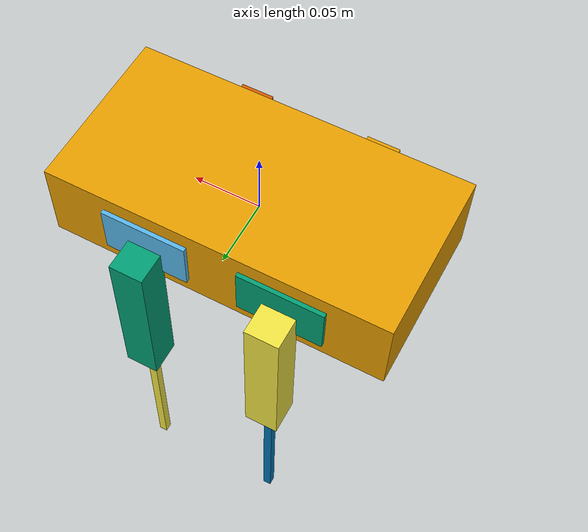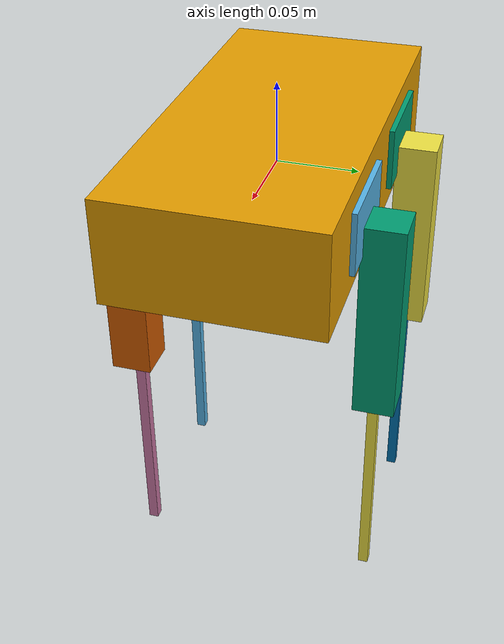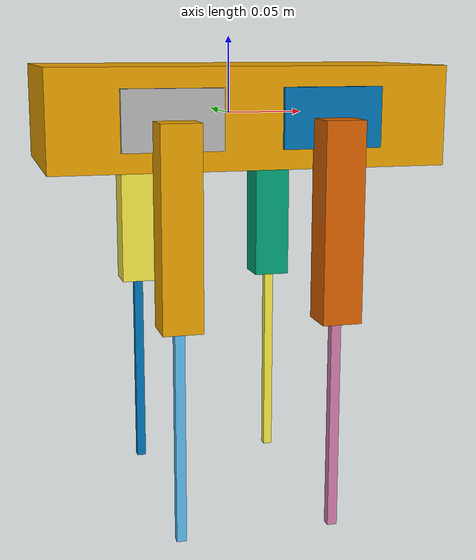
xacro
<?xml version="1.0" ?>
<!-- |    This document was autogenerated by xacro from /home/samee/ros2_ws/src/servo_controller/urdf/fixed_urdf2.urdf | -->
<!-- |    EDITING THIS FILE BY HAND IS NOT RECOMMENDED                                 | -->
<robot xmlns:xacro="http://www.ros.org/wiki/xacro" name="robot">

  <!-- Gazebo plugin for ros2_control -->
  <gazebo>
    <plugin name="gazebo_ros2_control" filename="libgazebo_ros2_control.so">
      <parameters>$(find servo_controller)/config/robot_controllers.yaml</parameters>

    </plugin>

  </gazebo>

  <link name="base_link">
    <visual>
      <geometry>
        <box size="0.254 0.127 0.0635"/>
      </geometry>
    </visual>
    <collision>
      <geometry>
        <box size="0.254 0.127 0.0635"/>
      </geometry>
    </collision>
    <inertial>
      <origin rpy="0.000 0.000 0.000" xyz="0.000 0.000 0.000"/>
      <mass value="2.000"/>
<inertia  ixx="0.0033602083333333335" ixy="0" ixz="0" iyy="0.011424708333333334" iyz="0" izz="0.013440833333333334" />    </inertial>
  </link>

  <!-- FL -->
  <joint name="hip_fl" type="revolute">
    <limit effort="100" lower="-0.2" upper="0.4" velocity="10"/>
    <origin rpy="0 0 0" xyz="0.0508 0.0508 0"/>
    <parent link="base_link"/>
    <child link="hipbone_fl"/>
    <axis xyz="1 0 0"/>
  </joint>

  <link name="hipbone_fl">
    <visual>
      <origin rpy="0 0 0" xyz="0.0 0.0 0"/>
      <geometry>
        <box size="0.0635 0.03175 0.0381"/>
      </geometry>
    </visual>
    <collision>
      <origin rpy="0 0 0" xyz="0.0 0.0 0"/>
      <geometry>
        <box size="0.0635 0.03175 0.0381"/>
      </geometry>
    </collision>
    <inertial>
      <origin rpy="0.000 0.000 0.000" xyz="0.000 0.000 0.000"/>
      <mass value="0.233"/>
<inertia  ixx="4.775864104166667e-05" ixy="0" ixz="0" iyy="0.00010647828166666667" iyz="0" izz="9.786606770833334e-05" />    </inertial>
  </link>

  <joint name="shoulder_fl" type="revolute">
    <limit effort="100" lower="-0.1" upper="0.6" velocity="10"/>
    <origin rpy="0 0 0" xyz="0 0 0"/>
    <axis xyz="0 1 0"/>
    <parent link="hipbone_fl"/>
    <child link="femur_fl"/>
  </joint>

  <link name="femur_fl">
    <visual>
      <origin rpy="0 0 0" xyz="0.0 0.027 -0.0635"/>
      <geometry>
        <box size="0.0254 0.0254 0.127"/>
      </geometry>
    </visual>
    <collision>
      <origin rpy="0 0 0" xyz="0.0 0.027 -0.0635"/>
      <geometry>
        <box size="0.0254 0.0254 0.127"/>
      </geometry>
    </collision>
    <inertial>
      <origin rpy="0.000 0.000 0.000" xyz="0.0 0.027 -0.0635"/>
      <mass value="0.084"/>
<inertia  ixx="0.00011741912" ixy="0" ixz="0" iyy="0.00011741912" iyz="0" izz="9.03224e-06" />    </inertial>
  </link>

  <joint name="knee_fl" type="revolute">
    <limit effort="100" lower="-0.5" upper="2" velocity="10"/>
    <origin rpy="0 0 1.57" xyz="0 0 -0.127"/>
    <axis xyz="0 1 0"/>
    <parent link="femur_fl"/>
    <child link="tibia_fl"/>
  </joint>

  <link name="tibia_fl">
    <visual>
      <origin rpy="0 0 0" xyz="0.0254 0.0 -0.06985"/>
      <geometry>
        <box size="0.00635 0.00635 0.1397"/>
      </geometry>
    </visual>
    <collision>
      <origin rpy="0 0 0" xyz="0.0254 0.0 -0.06985"/>
      <geometry>
        <box size="0.00635 0.00635 0.1397"/>
      </geometry>
    </collision>
    <inertial>
      <origin rpy="0.000 0.000 0.000" xyz="0.0254 0.0 -0.06985"/>
      <mass value="0.034"/>
<inertia  ixx="5.5409835416666655e-05" ixy="0" ixz="0" iyy="5.5409835416666655e-05" iyz="0" izz="2.2849416666666668e-07" />    </inertial>
  </link>

  <!-- FR -->
  <joint name="hip_fr" type="revolute">
    <limit effort="100" lower="-0.2" upper="0.4" velocity="10"/>
    <origin rpy="0 0 3.14" xyz="0.0508 -0.0508 0"/>
    <parent link="base_link"/>
    <child link="hipbone_fr"/>
    <axis xyz="1 0 0"/>
  </joint>

  <link name="hipbone_fr">
    <visual>
      <origin rpy="0 0 0" xyz=" 0.0 0.0 0"/>
      <geometry>
        <box size="0.0635 0.03175 0.0381"/>
      </geometry>
    </visual>
    <collision>
      <origin rpy="0 0 0" xyz=" 0.0 0.0 0"/>
      <geometry>
        <box size="0.0635 0.03175 0.0381"/>
      </geometry>
    </collision>
    <inertial>
      <origin rpy="0.000 0.000 0.000" xyz="0.000 0.000 0.000"/>
      <mass value="0.233"/>
<inertia  ixx="4.775864104166667e-05" ixy="0" ixz="0" iyy="0.00010647828166666667" iyz="0" izz="9.786606770833334e-05" />    </inertial>
  </link>

  <joint name="shoulder_fr" type="revolute">
    <limit effort="100" lower="-0.6" upper="0.1" velocity="10"/>
    <origin rpy="0 0 0" xyz="0 0 0"/>
    <axis xyz="0 1 0"/>
    <parent link="hipbone_fr"/>
    <child link="femur_fr"/>
  </joint>

  <link name="femur_fr">
    <visual>
      <origin rpy="0 0 0" xyz="0.0 0.027 -0.0635"/>
      <geometry>
        <box size="0.0254 0.0254 0.127"/>
      </geometry>
    </visual>
    <collision>
      <origin rpy="0 0 0" xyz="0.0 0.027 -0.0635"/>
      <geometry>
        <box size="0.0254 0.0254 0.127"/>
      </geometry>
    </collision>
    <inertial>
      <origin rpy="0.000 0.000 0.000" xyz="0.0 0.027 -0.0635"/>
      <mass value="0.084"/>
<inertia  ixx="0.00011741912" ixy="0" ixz="0" iyy="0.00011741912" iyz="0" izz="9.03224e-06" />    </inertial>
  </link>

  <joint name="knee_fr" type="revolute">
    <limit effort="100" lower="-0.5" upper="2" velocity="10"/>
    <origin rpy="0 0 1.57" xyz="0 0 -0.127"/>
    <axis xyz="0 1 0"/>
    <parent link="femur_fr"/>
    <child link="tibia_fr"/>
  </joint>

  <link name="tibia_fr">
    <visual>
      <origin rpy="0 0 0" xyz="0.0254 0.0 -0.06985"/>
      <geometry>
        <box size="0.00635 0.00635 0.1397"/>
      </geometry>
    </visual>
    <collision>
      <origin rpy="0 0 0" xyz="0.0254 0.0 -0.06985"/>
      <geometry>
        <box size="0.00635 0.00635 0.1397"/>
      </geometry>
    </collision>
    <inertial>
      <origin rpy="0.000 0.000 0.000" xyz="0.0254 0.0 -0.06985"/>
      <mass value="0.034"/>
<inertia  ixx="5.5409835416666655e-05" ixy="0" ixz="0" iyy="5.5409835416666655e-05" iyz="0" izz="2.2849416666666668e-07" />    </inertial>
  </link>

  <!-- BR -->
  <joint name="hip_br" type="revolute">
    <limit effort="100" lower="-0.2" upper="0.4" velocity="10"/>
    <origin rpy="0 0 3.14" xyz="-0.0508 -0.0508 0"/>
    <parent link="base_link"/>
    <child link="hipbone_br"/>
    <axis xyz="1 0 0"/>
  </joint>

  <link name="hipbone_br">
    <visual>
      <origin rpy="0 0 0" xyz=" 0.0 0.0 0"/>
      <geometry>
        <box size="0.0635 0.03175 0.0381"/>
      </geometry>
    </visual>
    <collision>
      <origin rpy="0 0 0" xyz=" 0.0 0.0 0"/>
      <geometry>
        <box size="0.0635 0.03175 0.0381"/>
      </geometry>
    </collision>
    <inertial>
      <origin rpy="0.000 0.000 0.000" xyz="0.000 0.000 0.000"/>
      <mass value="0.233"/>
<inertia  ixx="4.775864104166667e-05" ixy="0" ixz="0" iyy="0.00010647828166666667" iyz="0" izz="9.786606770833334e-05" />    </inertial>
  </link>

  <joint name="shoulder_br" type="revolute">
    <limit effort="100" lower="-0.6" upper="0.1" velocity="10"/>
    <origin rpy="0 0 0" xyz="0 0 0"/>
    <axis xyz="0 1 0"/>
    <parent link="hipbone_br"/>
    <child link="femur_br"/>
  </joint>

  <link name="femur_br">
    <visual>
      <origin rpy="0 0 0" xyz="0.0 0.027 -0.0635"/>
      <geometry>
        <box size="0.0254 0.0254 0.127"/>
      </geometry>
    </visual>
    <collision>
      <origin rpy="0 0 0" xyz="0.0 0.027 -0.0635"/>
      <geometry>
        <box size="0.0254 0.0254 0.127"/>
      </geometry>
    </collision>
    <inertial>
      <origin rpy="0.000 0.000 0.000" xyz="0.0 0.027 -0.0635"/>
      <mass value="0.084"/>
<inertia  ixx="0.00011741912" ixy="0" ixz="0" iyy="0.00011741912" iyz="0" izz="9.03224e-06" />    </inertial>
  </link>

  <joint name="knee_br" type="revolute">
    <limit effort="100" lower="-0.5" upper="2" velocity="10"/>
    <origin rpy="0 0 1.57" xyz="0 0 -0.127"/>
    <axis xyz="0 1 0"/>
    <parent link="femur_br"/>
    <child link="tibia_br"/>
  </joint>

  <link name="tibia_br">
    <visual>
      <origin rpy="0 0 0" xyz="0.0254 0.0 -0.06985"/>
      <geometry>
        <box size="0.00635 0.00635 0.1397"/>
      </geometry>
    </visual>
    <collision>
      <origin rpy="0 0 0" xyz="0.0254 0.0 -0.06985"/>
      <geometry>
        <box size="0.00635 0.00635 0.1397"/>
      </geometry>
    </collision>
    <inertial>
      <origin rpy="0.000 0.000 0.000" xyz="0.0254 0.0 -0.06985"/>
      <mass value="0.034"/>
<inertia  ixx="5.5409835416666655e-05" ixy="0" ixz="0" iyy="5.5409835416666655e-05" iyz="0" izz="2.2849416666666668e-07" />    </inertial>
  </link>

  <!-- BL -->
  <joint name="hip_bl" type="revolute">
    <limit effort="100" lower="-0.2" upper="0.4" velocity="10"/>
    <origin rpy="0 0 0" xyz="-0.0508 0.0508 0"/>
    <parent link="base_link"/>
    <child link="hipbone_bl"/>
    <axis xyz="1 0 0"/>
  </joint>

  <link name="hipbone_bl">
    <visual>
      <origin rpy="0 0 0" xyz=" 0.0 0.0 0"/>
      <geometry>
        <box size="0.0635 0.03175 0.0381"/>
      </geometry>
    </visual>
    <collision>
      <origin rpy="0 0 0" xyz=" 0.0 0.0 0"/>
      <geometry>
        <box size="0.0635 0.03175 0.0381"/>
      </geometry>
    </collision>
    <inertial>
      <origin rpy="0.000 0.000 0.000" xyz="0.000 0.000 0.000"/>
      <mass value="0.233"/>
<inertia  ixx="4.775864104166667e-05" ixy="0" ixz="0" iyy="0.00010647828166666667" iyz="0" izz="9.786606770833334e-05" />    </inertial>
  </link>

  <joint name="shoulder_bl" type="revolute">
    <limit effort="100" lower="-0.1" upper="0.6" velocity="10"/>
    <origin rpy="0 0 0" xyz="0 0 0"/>
    <axis xyz="0 1 0"/>
    <parent link="hipbone_bl"/>
    <child link="femur_bl"/>
  </joint>

  <link name="femur_bl">
    <visual>
      <origin rpy="0 0 0" xyz="0.0 0.027 -0.0635"/>
      <geometry>
        <box size="0.0254 0.0254 0.127"/>
      </geometry>
    </visual>
    <collision>
      <origin rpy="0 0 0" xyz="0.0 0.027 -0.0635"/>
      <geometry>
        <box size="0.0254 0.0254 0.127"/>
      </geometry>
    </collision>
    <inertial>
      <origin rpy="0.000 0.000 0.000" xyz="0.0 0.027 -0.0635"/>
      <mass value="0.084"/>
<inertia  ixx="0.00011741912" ixy="0" ixz="0" iyy="0.00011741912" iyz="0" izz="9.03224e-06" />    </inertial>
  </link>

  <joint name="knee_bl" type="revolute">
    <limit effort="100" lower="-0.5" upper="2" velocity="10"/>
    <origin rpy="0 0 1.57" xyz="0 0 -0.127"/>
      <axis xyz="0 1 0"/>
    <parent link="femur_bl"/>
    <child link="tibia_bl"/>
  </joint>

  <link name="tibia_bl">
    <visual>
      <origin rpy="0 0 0" xyz="0.0254 0.0 -0.06985"/>
      <geometry>
        <box size="0.00635 0.00635 0.1397"/>
      </geometry>
    </visual>
    <collision>
      <origin rpy="0 0 0" xyz="0.0254 0.0 -0.06985"/>
      <geometry>
        <box size="0.00635 0.00635 0.1397"/>
      </geometry>
    </collision>
    <inertial>
      <origin rpy="0.000 0.000 0.000" xyz="0.0254 0.0 -0.06985"/>
      <mass value="0.034"/>
<inertia  ixx="5.5409835416666655e-05" ixy="0" ixz="0" iyy="5.5409835416666655e-05" iyz="0" izz="2.2849416666666668e-07" />   </inertial>
  </link>

  <!-- ros2_control Configuration -->
  <ros2_control name="GazeboSystem" type="system">
    <hardware>
      <plugin>gazebo_ros2_control/GazeboSystem</plugin>
    </hardware>

    <!-- Define all the joints that will be controlled -->
    <joint name="hip_fl">
      <state_interface name="position"/>
      <command_interface name="position"/>
    </joint>

    <joint name="shoulder_fl">
      <state_interface name="position"/>
      <command_interface name="position"/>
    </joint>

    <joint name="knee_fl">
      <state_interface name="position"/>
      <command_interface name="position"/>
    </joint>

    <joint name="hip_fr">
      <state_interface name="position"/>
      <command_interface name="position"/>
    </joint>

    <joint name="shoulder_fr">
      <state_interface name="position"/>
      <command_interface name="position"/>
    </joint>

    <joint name="knee_fr">
      <state_interface name="position"/>
      <command_interface name="position"/>
    </joint>

    <joint name="hip_br">
      <state_interface name="position"/>
      <command_interface name="position"/>
    </joint>

    <joint name="shoulder_br">
      <state_interface name="position"/>
      <command_interface name="position"/>
    </joint>

    <joint name="knee_br">
      <state_interface name="position"/>
      <command_interface name="position"/>
    </joint>

    <joint name="hip_bl">
      <state_interface name="position"/>
      <command_interface name="position"/>
    </joint>

    <joint name="shoulder_bl">
      <state_interface name="position"/>
      <command_interface name="position"/>
    </joint>

    <joint name="knee_bl">
      <state_interface name="position"/>
      <command_interface name="position"/>
    </joint>

  </ros2_control>

</robot>
